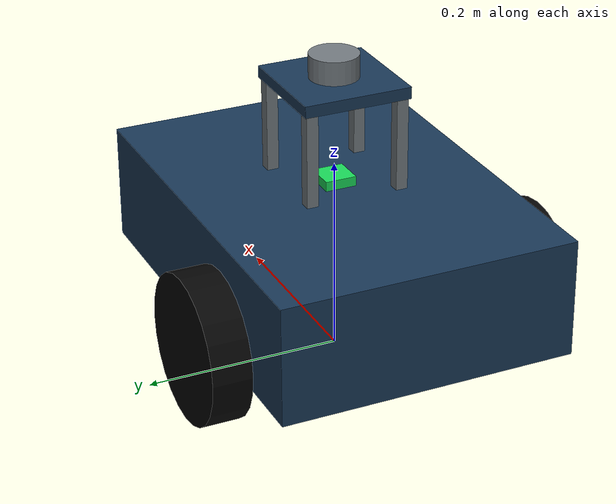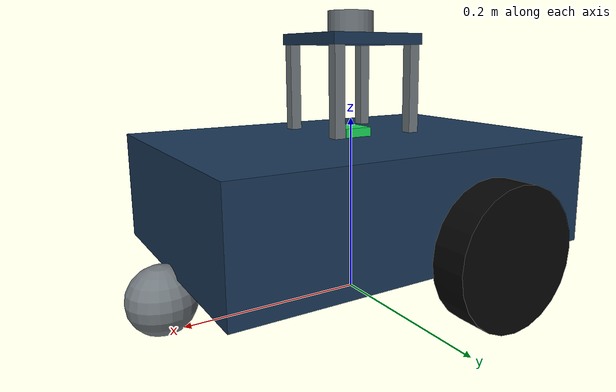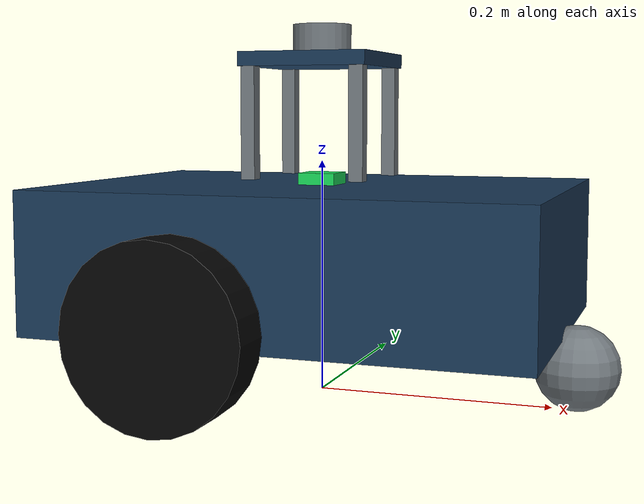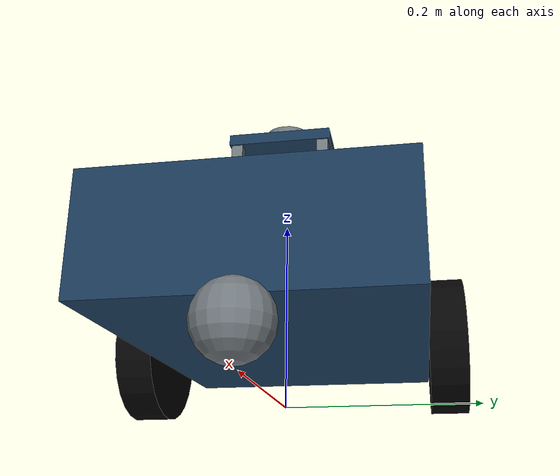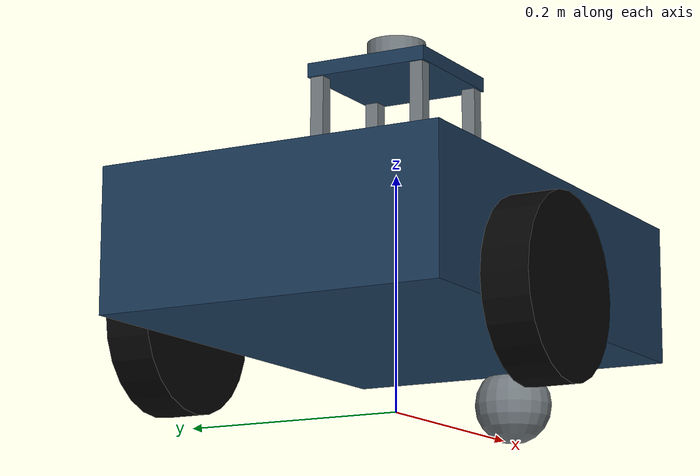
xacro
<?xml version="1.0"?>
<robot name="robonav_training_robot" xmlns:xacro="http://www.ros.org/wiki/xacro">
  <xacro:arg name="use_ros2_control" default="true"/>
  <xacro:arg name="use_gazebo" default="true"/>
  <xacro:arg name="ros2_control_config" default="$(find robonav_training_description)/config/ros2_control.yaml"/>

  <xacro:include filename="$(find robonav_training_description)/urdf/sensors/lidar.xacro"/>
  <xacro:include filename="$(find robonav_training_description)/urdf/sensors/lidar_tower.xacro"/>
  <xacro:include filename="$(find robonav_training_description)/urdf/sensors/imu.xacro"/>

  <xacro:property name="base_length" value="0.42"/>
  <xacro:property name="base_width" value="0.30"/>
  <xacro:property name="base_height" value="0.12"/>
  <xacro:property name="base_mass" value="8.0"/>
  <xacro:property name="base_z" value="0.12"/>

  <xacro:property name="wheel_radius" value="0.075"/>
  <xacro:property name="wheel_width" value="0.04"/>
  <xacro:property name="wheel_mass" value="0.6"/>
  <xacro:property name="wheel_separation" value="0.34"/>
  <xacro:property name="wheel_x_offset" value="-0.07"/>

  <xacro:property name="caster_radius" value="0.035"/>
  <xacro:property name="caster_mass" value="0.2"/>
  <xacro:property name="caster_x_offset" value="0.22"/>

  <xacro:property name="sensor_tower_x_offset" value="0.00"/>
  <xacro:property name="sensor_tower_y_offset" value="0.00"/>
  <xacro:property name="sensor_tower_plate_size" value="0.11"/>
  <xacro:property name="sensor_tower_leg_height" value="0.10"/>
  <xacro:property name="sensor_tower_plate_thickness" value="0.012"/>
  <xacro:property name="sensor_tower_z_offset" value="${base_height / 2.0 + sensor_tower_leg_height + sensor_tower_plate_thickness / 2.0}"/>
  <xacro:property name="lidar_mount_z_offset" value="${sensor_tower_plate_thickness / 2.0 + 0.0115}"/>
  <xacro:property name="imu_mount_z_offset" value="${base_height / 2.0 + 0.002}"/>
  <xacro:property name="imu_x_offset" value="0.0"/>

  <material name="base_blue">
    <color rgba="0.10 0.22 0.34 1.0"/>
  </material>
  <material name="wheel_black">
    <color rgba="0.02 0.02 0.02 1.0"/>
  </material>
  <material name="caster_gray">
    <color rgba="0.45 0.48 0.50 1.0"/>
  </material>

  <xacro:macro name="box_inertial" params="mass x y z">
    <inertial>
      <origin xyz="0 0 0" rpy="0 0 0"/>
      <mass value="${mass}"/>
      <inertia
        ixx="${mass * (y * y + z * z) / 12.0}" ixy="0.0" ixz="0.0"
        iyy="${mass * (x * x + z * z) / 12.0}" iyz="0.0"
        izz="${mass * (x * x + y * y) / 12.0}"/>
    </inertial>
  </xacro:macro>

  <xacro:macro name="wheel_inertial" params="mass radius width">
    <inertial>
      <origin xyz="0 0 0" rpy="0 0 0"/>
      <mass value="${mass}"/>
      <inertia
        ixx="${mass * (3.0 * radius * radius + width * width) / 12.0}" ixy="0.0" ixz="0.0"
        iyy="${mass * radius * radius / 2.0}" iyz="0.0"
        izz="${mass * (3.0 * radius * radius + width * width) / 12.0}"/>
    </inertial>
  </xacro:macro>

  <xacro:macro name="sphere_inertial" params="mass radius">
    <inertial>
      <origin xyz="0 0 0" rpy="0 0 0"/>
      <mass value="${mass}"/>
      <inertia
        ixx="${0.4 * mass * radius * radius}" ixy="0.0" ixz="0.0"
        iyy="${0.4 * mass * radius * radius}" iyz="0.0"
        izz="${0.4 * mass * radius * radius}"/>
    </inertial>
  </xacro:macro>

  <link name="base_footprint"/>

  <joint name="base_footprint_joint" type="fixed">
    <parent link="base_footprint"/>
    <child link="base_link"/>
    <origin xyz="0 0 ${base_z}" rpy="0 0 0"/>
  </joint>

  <link name="base_link">
    <visual>
      <origin xyz="0 0 0" rpy="0 0 0"/>
      <geometry>
        <box size="${base_length} ${base_width} ${base_height}"/>
      </geometry>
      <material name="base_blue"/>
    </visual>
    <collision>
      <origin xyz="0 0 0" rpy="0 0 0"/>
      <geometry>
        <box size="${base_length} ${base_width} ${base_height}"/>
      </geometry>
    </collision>
    <xacro:box_inertial mass="${base_mass}" x="${base_length}" y="${base_width}" z="${base_height}"/>
  </link>

  <xacro:macro name="drive_wheel" params="side y">
    <joint name="${side}_wheel_joint" type="continuous">
      <parent link="base_link"/>
      <child link="${side}_wheel_link"/>
      <origin xyz="${wheel_x_offset} ${y} ${wheel_radius - base_z}" rpy="0 0 0"/>
      <axis xyz="0 1 0"/>
      <dynamics damping="0.02" friction="0.02"/>
    </joint>

    <link name="${side}_wheel_link">
      <visual>
        <origin xyz="0 0 0" rpy="${pi / 2.0} 0 0"/>
        <geometry>
          <cylinder radius="${wheel_radius}" length="${wheel_width}"/>
        </geometry>
        <material name="wheel_black"/>
      </visual>
      <collision>
        <origin xyz="0 0 0" rpy="${pi / 2.0} 0 0"/>
        <geometry>
          <cylinder radius="${wheel_radius}" length="${wheel_width}"/>
        </geometry>
      </collision>
      <xacro:wheel_inertial mass="${wheel_mass}" radius="${wheel_radius}" width="${wheel_width}"/>
    </link>
  </xacro:macro>

  <xacro:drive_wheel side="left" y="${wheel_separation / 2.0}"/>
  <xacro:drive_wheel side="right" y="${-wheel_separation / 2.0}"/>

  <xacro:lidar_tower
    parent="base_link" x="${sensor_tower_x_offset}" y="${sensor_tower_y_offset}"
    z="${sensor_tower_z_offset}" plate_size="${sensor_tower_plate_size}"
    leg_height="${sensor_tower_leg_height}" plate_thickness="${sensor_tower_plate_thickness}"/>
  <xacro:lidar_sensor parent="sensor_tower_top_link" x="0.0" y="0.0" z="${lidar_mount_z_offset}"/>
  <xacro:imu_sensor parent="base_link" x="${imu_x_offset}" y="0.0" z="${imu_mount_z_offset}"/>

  <joint name="caster_joint" type="fixed">
    <parent link="base_link"/>
    <child link="caster_link"/>
    <origin xyz="${caster_x_offset} 0 ${caster_radius - base_z}" rpy="0 0 0"/>
  </joint>

  <link name="caster_link">
    <visual>
      <origin xyz="0 0 0" rpy="0 0 0"/>
      <geometry>
        <sphere radius="${caster_radius}"/>
      </geometry>
      <material name="caster_gray"/>
    </visual>
    <collision>
      <origin xyz="0 0 0" rpy="0 0 0"/>
      <geometry>
        <sphere radius="${caster_radius}"/>
      </geometry>
    </collision>
    <xacro:sphere_inertial mass="${caster_mass}" radius="${caster_radius}"/>
  </link>

  <gazebo reference="base_link">
    <material>Gazebo/Blue</material>
  </gazebo>
  <gazebo reference="left_wheel_link">
    <material>Gazebo/Black</material>
  </gazebo>
  <gazebo reference="right_wheel_link">
    <material>Gazebo/Black</material>
  </gazebo>
  <gazebo reference="caster_link">
    <material>Gazebo/Grey</material>
    <mu1>0.01</mu1>
    <mu2>0.01</mu2>
  </gazebo>

  <xacro:if value="$(arg use_ros2_control)">
    <ros2_control name="GazeboSimSystem" type="system">
      <hardware>
        <plugin>gz_ros2_control/GazeboSimSystem</plugin>
      </hardware>
      <joint name="left_wheel_joint">
        <command_interface name="velocity">
          <param name="min">-10.0</param>
          <param name="max">10.0</param>
        </command_interface>
        <state_interface name="position"/>
        <state_interface name="velocity"/>
      </joint>
      <joint name="right_wheel_joint">
        <command_interface name="velocity">
          <param name="min">-10.0</param>
          <param name="max">10.0</param>
        </command_interface>
        <state_interface name="position"/>
        <state_interface name="velocity"/>
      </joint>
    </ros2_control>
  </xacro:if>

  <xacro:if value="$(arg use_gazebo)">
    <gazebo>
      <plugin filename="gz_ros2_control-system" name="gz_ros2_control::GazeboSimROS2ControlPlugin">
        <ros>
          <remapping>/diff_drive_controller/cmd_vel_unstamped:=/cmd_vel</remapping>
        </ros>
        <parameters>$(arg ros2_control_config)</parameters>
      </plugin>
    </gazebo>
  </xacro:if>
</robot>

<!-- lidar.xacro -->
<robot xmlns:xacro="http://www.ros.org/wiki/xacro">
  <xacro:macro name="lidar_sensor" params="parent x y z">
    <joint name="lidar_joint" type="fixed">
      <parent link="${parent}"/>
      <child link="lidar_link"/>
      <origin xyz="${x} ${y} ${z}" rpy="0 0 0"/>
    </joint>

    <link name="lidar_link">
      <visual>
        <origin xyz="0 0 0" rpy="0 0 0"/>
        <geometry>
          <cylinder radius="0.025" length="0.025"/>
        </geometry>
        <material name="caster_gray"/>
      </visual>
      <collision>
        <origin xyz="0 0 0" rpy="0 0 0"/>
        <geometry>
          <cylinder radius="0.025" length="0.025"/>
        </geometry>
      </collision>
    </link>

    <gazebo reference="lidar_link">
      <sensor name="lidar_sensor" type="gpu_lidar">
        <always_on>true</always_on>
        <update_rate>10</update_rate>
        <visualize>true</visualize>
        <topic>lidar/scan</topic>
        <gz_frame_id>lidar_link</gz_frame_id>
        <lidar>
          <scan>
            <horizontal>
              <samples>360</samples>
              <resolution>1</resolution>
              <min_angle>-1.5708</min_angle>
              <max_angle>1.5708</max_angle>
            </horizontal>
          </scan>
          <range>
            <min>0.12</min>
            <max>12.0</max>
            <resolution>0.02</resolution>
          </range>
        </lidar>
      </sensor>
    </gazebo>
  </xacro:macro>
</robot>

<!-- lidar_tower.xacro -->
<robot xmlns:xacro="http://www.ros.org/wiki/xacro">
  <xacro:macro name="tower_leg" params="parent name offset_x offset_y leg_height">
    <joint name="${name}_joint" type="fixed">
      <parent link="${parent}"/>
      <child link="${name}_link"/>
      <origin xyz="${offset_x} ${offset_y} ${-leg_height / 2.0}" rpy="0 0 0"/>
    </joint>

    <link name="${name}_link">
      <visual>
        <origin xyz="0 0 0" rpy="0 0 0"/>
        <geometry>
          <box size="0.012 0.012 ${leg_height}"/>
        </geometry>
        <material name="caster_gray"/>
      </visual>
      <collision>
        <origin xyz="0 0 0" rpy="0 0 0"/>
        <geometry>
          <box size="0.012 0.012 ${leg_height}"/>
        </geometry>
      </collision>
    </link>
  </xacro:macro>

  <xacro:macro name="lidar_tower" params="parent x y z plate_size leg_height plate_thickness">
    <joint name="sensor_tower_mount_joint" type="fixed">
      <parent link="${parent}"/>
      <child link="sensor_tower_top_link"/>
      <origin xyz="${x} ${y} ${z}" rpy="0 0 0"/>
    </joint>

    <link name="sensor_tower_top_link">
      <visual>
        <origin xyz="0 0 0" rpy="0 0 0"/>
        <geometry>
          <box size="${plate_size} ${plate_size} ${plate_thickness}"/>
        </geometry>
        <material name="base_blue"/>
      </visual>
      <collision>
        <origin xyz="0 0 0" rpy="0 0 0"/>
        <geometry>
          <box size="${plate_size} ${plate_size} ${plate_thickness}"/>
        </geometry>
      </collision>
    </link>

    <xacro:tower_leg
      parent="sensor_tower_top_link" name="sensor_tower_front_left_leg"
      offset_x="${plate_size / 2.0 - 0.008}" offset_y="${plate_size / 2.0 - 0.008}"
      leg_height="${leg_height}"/>
    <xacro:tower_leg
      parent="sensor_tower_top_link" name="sensor_tower_front_right_leg"
      offset_x="${plate_size / 2.0 - 0.008}" offset_y="${-plate_size / 2.0 + 0.008}"
      leg_height="${leg_height}"/>
    <xacro:tower_leg
      parent="sensor_tower_top_link" name="sensor_tower_back_left_leg"
      offset_x="${-plate_size / 2.0 + 0.008}" offset_y="${plate_size / 2.0 - 0.008}"
      leg_height="${leg_height}"/>
    <xacro:tower_leg
      parent="sensor_tower_top_link" name="sensor_tower_back_right_leg"
      offset_x="${-plate_size / 2.0 + 0.008}" offset_y="${-plate_size / 2.0 + 0.008}"
      leg_height="${leg_height}"/>
  </xacro:macro>
</robot>

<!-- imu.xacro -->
<robot xmlns:xacro="http://www.ros.org/wiki/xacro">
  <material name="imu_green">
    <color rgba="0.10 0.85 0.35 1.0"/>
  </material>

  <xacro:macro name="imu_sensor" params="parent x y z">
    <joint name="imu_joint" type="fixed">
      <parent link="${parent}"/>
      <child link="imu_link"/>
      <origin xyz="${x} ${y} ${z}" rpy="0 0 0"/>
    </joint>

    <link name="imu_link">
      <visual>
        <origin xyz="0 0 0" rpy="0 0 0"/>
        <geometry>
          <box size="0.032 0.032 0.016"/>
        </geometry>
        <material name="imu_green"/>
      </visual>
      <collision>
        <origin xyz="0 0 0" rpy="0 0 0"/>
        <geometry>
          <box size="0.032 0.032 0.016"/>
        </geometry>
      </collision>
    </link>

    <gazebo reference="imu_link">
      <sensor name="imu_sensor" type="imu">
        <always_on>true</always_on>
        <update_rate>100</update_rate>
        <topic>imu/data</topic>
        <gz_frame_id>imu_link</gz_frame_id>
        <imu>
          <angular_velocity>
            <x><noise type="gaussian"><mean>0.0</mean><stddev>0.0017</stddev></noise></x>
            <y><noise type="gaussian"><mean>0.0</mean><stddev>0.0017</stddev></noise></y>
            <z><noise type="gaussian"><mean>0.0</mean><stddev>0.0017</stddev></noise></z>
          </angular_velocity>
          <linear_acceleration>
            <x><noise type="gaussian"><mean>0.0</mean><stddev>0.017</stddev></noise></x>
            <y><noise type="gaussian"><mean>0.0</mean><stddev>0.017</stddev></noise></y>
            <z><noise type="gaussian"><mean>0.0</mean><stddev>0.017</stddev></noise></z>
          </linear_acceleration>
        </imu>
      </sensor>
    </gazebo>
  </xacro:macro>
</robot>
